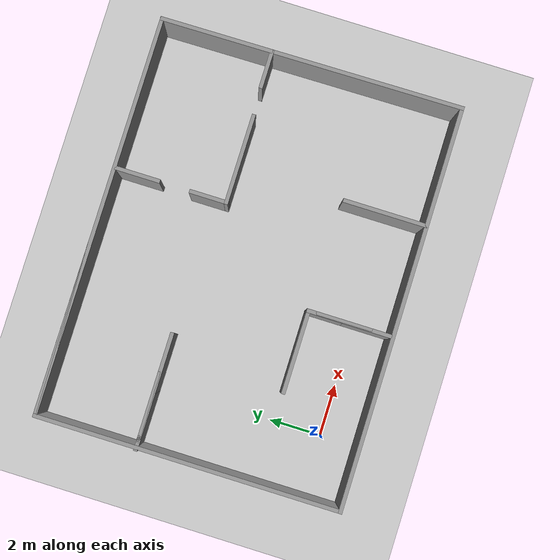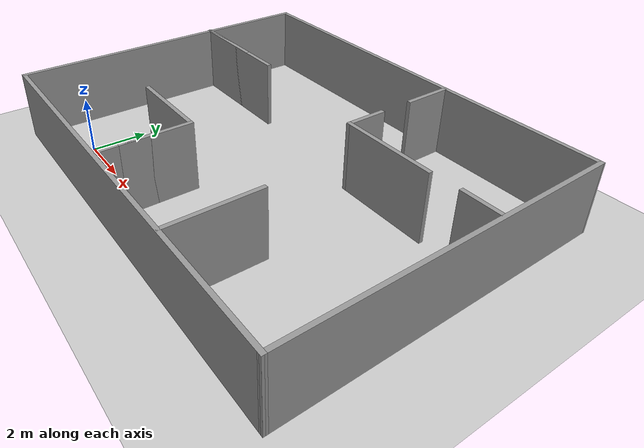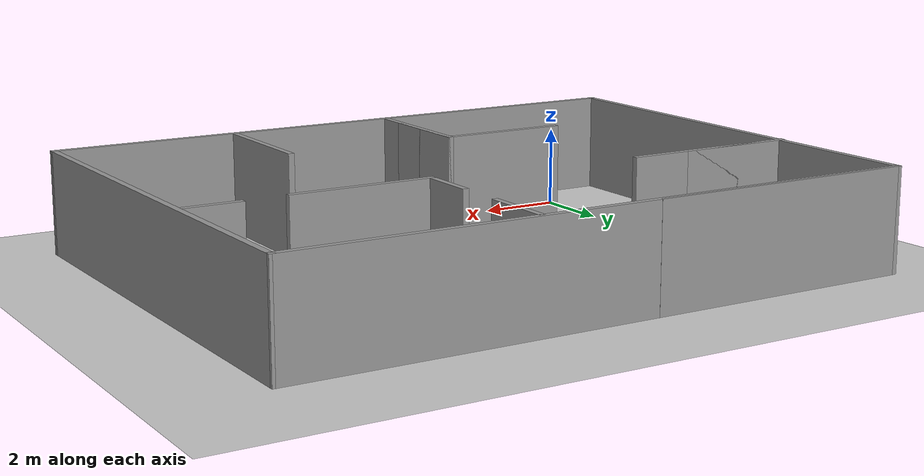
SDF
<sdf version="1.6">
 <world name="default">
  <light name="sun" type="directional">
   <pose>0 0 10 0 -0 0</pose>
   <diffuse>0.8 0.8 0.8 1</diffuse>
   <specular>0.2 0.2 0.2 1</specular>
   <attenuation>
    <range>1000</range>
    <constant>0.9</constant>
    <linear>0.01</linear>
    <quadratic>0.001</quadratic>
   </attenuation>
   <direction>-0.5 0.1 -0.9</direction>
  </light>
  <model name="ground_plane">
   <static>1</static>
   <link name="link">
    <collision name="collision">
     <geometry><plane><normal>0 0 1</normal><size>100 100</size></plane></geometry>
     <surface>
      <contact><collide_bitmask>65535</collide_bitmask></contact>
      <friction><ode><mu>100</mu><mu2>50</mu2></ode></friction>
     </surface>
    </collision>
    <visual name="visual">
     <cast_shadows>0</cast_shadows>
     <geometry><plane><normal>0 0 1</normal><size>100 100</size></plane></geometry>
     <material>
      <script><uri>file://media/materials/scripts/gazebo.material</uri><name>Gazebo/Grey</name></script>
     </material>
    </visual>
   </link>
  </model>
  <gravity>0 0 -9.8</gravity>
  <magnetic_field>6e-06 2.3e-05 -4.2e-05</magnetic_field>
  <atmosphere type="adiabatic"/>
  <physics name="default_physics" default="0" type="ode">
   <max_step_size>0.001</max_step_size>
   <real_time_factor>1</real_time_factor>
   <real_time_update_rate>1000</real_time_update_rate>
  </physics>
  <scene><ambient>0.4 0.4 0.4 1</ambient><background>0.7 0.7 0.7 1</background><shadows>1</shadows></scene>
  <audio><device>default</device></audio>
  <spherical_coordinates>
   <surface_model>EARTH_WGS84</surface_model>
   <latitude_deg>0</latitude_deg>
   <longitude_deg>0</longitude_deg>
   <elevation>0</elevation>
   <heading_deg>0</heading_deg>
  </spherical_coordinates>
  <model name="first_world">
   <pose>5.39541 4.45717 0 0 -0 0</pose>
   <link name="Wall_0">
    <collision name="Wall_0_Collision">
     <geometry><box><size>15.5975 0.15 2.5</size></box></geometry>
     <pose>0 0 1.25 0 -0 0</pose>
    </collision>
    <visual name="Wall_0_Visual">
     <pose>0 0 1.25 0 -0 0</pose>
     <geometry><box><size>15.5975 0.15 2.5</size></box></geometry>
     <material>
      <script><uri>file://media/materials/scripts/gazebo.material</uri><name>Gazebo/Grey</name></script>
      <ambient>1 1 1 1</ambient>
     </material>
     <meta><layer>0</layer></meta>
    </visual>
    <pose>0.026271 -5.80109 0 0 -0 -3.13952</pose>
   </link>
   <link name="Wall_10">
    <collision name="Wall_10_Collision">
     <geometry><box><size>11.7504 0.15 2.5</size></box></geometry>
     <pose>0 0 1.25 0 -0 0</pose>
    </collision>
    <visual name="Wall_10_Visual">
     <pose>0 0 1.25 0 -0 0</pose>
     <geometry><box><size>11.7504 0.15 2.5</size></box></geometry>
     <material>
      <script><uri>file://media/materials/scripts/gazebo.material</uri><name>Gazebo/Grey</name></script>
      <ambient>1 1 1 1</ambient>
     </material>
     <meta><layer>0</layer></meta>
    </visual>
    <pose>7.70127 0.014956 0 0 -0 -1.56239</pose>
   </link>
   <link name="Wall_12">
    <collision name="Wall_12_Collision">
     <geometry><box><size>2.5 0.15 2.5</size></box></geometry>
     <pose>0 0 1.25 0 -0 0</pose>
    </collision>
    <visual name="Wall_12_Visual">
     <pose>0 0 1.25 0 -0 0</pose>
     <geometry><box><size>2.5 0.15 2.5</size></box></geometry>
     <material>
      <script><uri>file://media/materials/scripts/gazebo.material</uri><name>Gazebo/Grey</name></script>
      <ambient>1 1 1 1</ambient>
     </material>
     <meta><layer>0</layer></meta>
    </visual>
    <pose>-1.09065 -3.75018 0 0 -0 1.5708</pose>
   </link>
   <link name="Wall_13">
    <collision name="Wall_13_Collision">
     <geometry><box><size>3.25 0.15 2.5</size></box></geometry>
     <pose>0 0 1.25 0 -0 0</pose>
    </collision>
    <visual name="Wall_13_Visual">
     <pose>0 0 1.25 0 -0 0</pose>
     <geometry><box><size>3.25 0.15 2.5</size></box></geometry>
     <material>
      <script><uri>file://media/materials/scripts/gazebo.material</uri><name>Gazebo/Grey</name></script>
      <ambient>1 1 1 1</ambient>
     </material>
     <meta><layer>0</layer></meta>
    </visual>
    <pose>-1.09065 -4.12518 0 0 -0 -1.5708</pose>
   </link>
   <link name="Wall_15">
    <collision name="Wall_15_Collision">
     <geometry><box><size>3.25 0.15 2.5</size></box></geometry>
     <pose>0 0 1.25 0 -0 0</pose>
    </collision>
    <visual name="Wall_15_Visual">
     <pose>0 0 1.25 0 -0 0</pose>
     <geometry><box><size>3.25 0.15 2.5</size></box></geometry>
     <material>
      <script><uri>file://media/materials/scripts/gazebo.material</uri><name>Gazebo/Grey</name></script>
      <ambient>1 1 1 1</ambient>
     </material>
     <meta><layer>0</layer></meta>
    </visual>
    <pose>-2.64065 -2.57518 0 0 -0 3.14159</pose>
   </link>
   <link name="Wall_17">
    <collision name="Wall_17_Collision">
     <geometry><box><size>3.25 0.15 2.5</size></box></geometry>
     <pose>0 0 1.25 0 -0 0</pose>
    </collision>
    <visual name="Wall_17_Visual">
     <pose>0 0 1.25 0 -0 0</pose>
     <geometry><box><size>3.25 0.15 2.5</size></box></geometry>
     <material>
      <script><uri>file://media/materials/scripts/gazebo.material</uri><name>Gazebo/Grey</name></script>
      <ambient>1 1 1 1</ambient>
     </material>
     <meta><layer>0</layer></meta>
    </visual>
    <pose>3.17643 -4.20935 0 0 -0 1.5708</pose>
   </link>
   <link name="Wall_21">
    <collision name="Wall_21_Collision">
     <geometry><box><size>1.5 0.15 2.5</size></box></geometry>
     <pose>0 0 1.25 0 -0 0</pose>
    </collision>
    <visual name="Wall_21_Visual">
     <pose>0 0 1.25 0 -0 0</pose>
     <geometry><box><size>1.5 0.15 2.5</size></box></geometry>
     <material>
      <script><uri>file://media/materials/scripts/gazebo.material</uri><name>Gazebo/Grey</name></script>
      <ambient>1 1 1 1</ambient>
     </material>
     <meta><layer>0</layer></meta>
    </visual>
    <pose>6.9931 1.55565 0 0 -0 3.14159</pose>
   </link>
   <link name="Wall_23">
    <collision name="Wall_23_Collision">
     <geometry><box><size>3.5 0.15 2.5</size></box></geometry>
     <pose>0 0 1.25 0 -0 0</pose>
    </collision>
    <visual name="Wall_23_Visual">
     <pose>0 0 1.25 0 -0 0</pose>
     <geometry><box><size>3.5 0.15 2.5</size></box></geometry>
     <material>
      <script><uri>file://media/materials/scripts/gazebo.material</uri><name>Gazebo/Grey</name></script>
      <ambient>1 1 1 1</ambient>
     </material>
     <meta><layer>0</layer></meta>
    </visual>
    <pose>3.4906 1.49148 0 0 -0 3.14159</pose>
   </link>
   <link name="Wall_24">
    <collision name="Wall_24_Collision">
     <geometry><box><size>1.5 0.15 2.5</size></box></geometry>
     <pose>0 0 1.25 0 -0 0</pose>
    </collision>
    <visual name="Wall_24_Visual">
     <pose>0 0 1.25 0 -0 0</pose>
     <geometry><box><size>1.5 0.15 2.5</size></box></geometry>
     <material>
      <script><uri>file://media/materials/scripts/gazebo.material</uri><name>Gazebo/Grey</name></script>
      <ambient>1 1 1 1</ambient>
     </material>
     <meta><layer>0</layer></meta>
    </visual>
    <pose>1.8156 2.16648 0 0 -0 1.5708</pose>
   </link>
   <link name="Wall_26">
    <collision name="Wall_26_Collision">
     <geometry><box><size>1.75 0.15 2.5</size></box></geometry>
     <pose>0 0 1.25 0 -0 0</pose>
    </collision>
    <visual name="Wall_26_Visual">
     <pose>0 0 1.25 0 -0 0</pose>
     <geometry><box><size>1.75 0.15 2.5</size></box></geometry>
     <material>
      <script><uri>file://media/materials/scripts/gazebo.material</uri><name>Gazebo/Grey</name></script>
      <ambient>1 1 1 1</ambient>
     </material>
     <meta><layer>0</layer></meta>
    </visual>
    <pose>1.82893 4.92648 0 0 -0 -1.5708</pose>
   </link>
   <link name="Wall_28">
    <collision name="Wall_28_Collision">
     <geometry><box><size>4.5 0.15 2.5</size></box></geometry>
     <pose>0 0 1.25 0 -0 0</pose>
    </collision>
    <visual name="Wall_28_Visual">
     <pose>0 0 1.25 0 -0 0</pose>
     <geometry><box><size>4.5 0.15 2.5</size></box></geometry>
     <material>
      <script><uri>file://media/materials/scripts/gazebo.material</uri><name>Gazebo/Grey</name></script>
      <ambient>1 1 1 1</ambient>
     </material>
     <meta><layer>0</layer></meta>
    </visual>
    <pose>-5.57565 1.94065 0 0 -0 3.14159</pose>
   </link>
   <link name="Wall_29">
    <collision name="Wall_29_Collision">
     <geometry><box><size>0.15 0.15 2.5</size></box></geometry>
     <pose>0 0 1.25 0 -0 0</pose>
    </collision>
    <visual name="Wall_29_Visual">
     <pose>0 0 1.25 0 -0 0</pose>
     <geometry><box><size>0.15 0.15 2.5</size></box></geometry>
     <material>
      <script><uri>file://media/materials/scripts/gazebo.material</uri><name>Gazebo/Grey</name></script>
      <ambient>1 1 1 1</ambient>
     </material>
     <meta><layer>0</layer></meta>
    </visual>
    <pose>-7.75065 1.94065 0 0 -0 0</pose>
   </link>
   <link name="Wall_30">
    <collision name="Wall_30_Collision">
     <geometry><box><size>3 0.15 2.5</size></box></geometry>
     <pose>0 0 1.25 0 -0 0</pose>
    </collision>
    <visual name="Wall_30_Visual">
     <pose>0 0 1.25 0 -0 0</pose>
     <geometry><box><size>3 0.15 2.5</size></box></geometry>
     <material>
      <script><uri>file://media/materials/scripts/gazebo.material</uri><name>Gazebo/Grey</name></script>
      <ambient>1 1 1 1</ambient>
     </material>
     <meta><layer>0</layer></meta>
    </visual>
    <pose>-6.32565 1.94065 0 0 -0 0</pose>
   </link>
   <link name="Wall_6">
    <collision name="Wall_6_Collision">
     <geometry><box><size>11.75 0.15 2.5</size></box></geometry>
     <pose>0 0 1.25 0 -0 0</pose>
    </collision>
    <visual name="Wall_6_Visual">
     <pose>0 0 1.25 0 -0 0</pose>
     <geometry><box><size>11.75 0.15 2.5</size></box></geometry>
     <material>
      <script><uri>file://media/materials/scripts/gazebo.material</uri><name>Gazebo/Grey</name></script>
      <ambient>1 1 1 1</ambient>
     </material>
     <meta><layer>0</layer></meta>
    </visual>
    <pose>-7.69748 0.014956 0 0 -0 -1.5708</pose>
   </link>
   <link name="Wall_8">
    <collision name="Wall_8_Collision">
     <geometry><box><size>6.72966 0.15 2.5</size></box></geometry>
     <pose>0 0 1.25 0 -0 0</pose>
    </collision>
    <visual name="Wall_8_Visual">
     <pose>0 0 1.25 0 -0 0</pose>
     <geometry><box><size>6.72966 0.15 2.5</size></box></geometry>
     <material>
      <script><uri>file://media/materials/scripts/gazebo.material</uri><name>Gazebo/Grey</name></script>
      <ambient>1 1 1 1</ambient>
     </material>
     <meta><layer>0</layer></meta>
    </visual>
    <pose>-4.40765 5.81611 0 0 -0 -3.14124</pose>
   </link>
   <link name="Wall_9">
    <collision name="Wall_9_Collision">
     <geometry><box><size>15.5 0.15 2.5</size></box></geometry>
     <pose>0 0 1.25 0 -0 0</pose>
    </collision>
    <visual name="Wall_9_Visual">
     <pose>0 0 1.25 0 -0 0</pose>
     <geometry><box><size>15.5 0.15 2.5</size></box></geometry>
     <material>
      <script><uri>file://media/materials/scripts/gazebo.material</uri><name>Gazebo/Grey</name></script>
      <ambient>1 1 1 1</ambient>
     </material>
     <meta><layer>0</layer></meta>
    </visual>
    <pose>-0.022478 5.81496 0 0 -0 0</pose>
   </link>
   <static>1</static>
  </model>
 </world>
</sdf>
